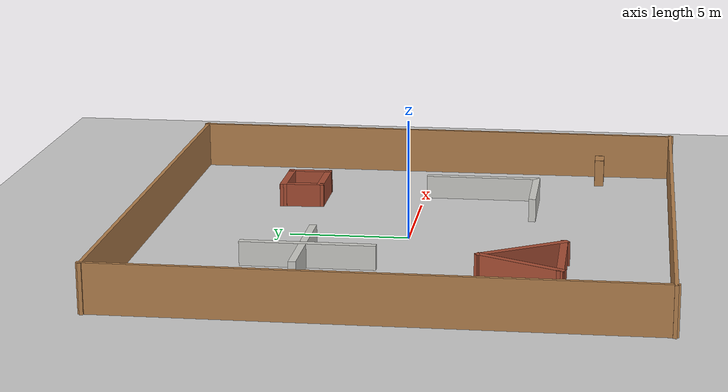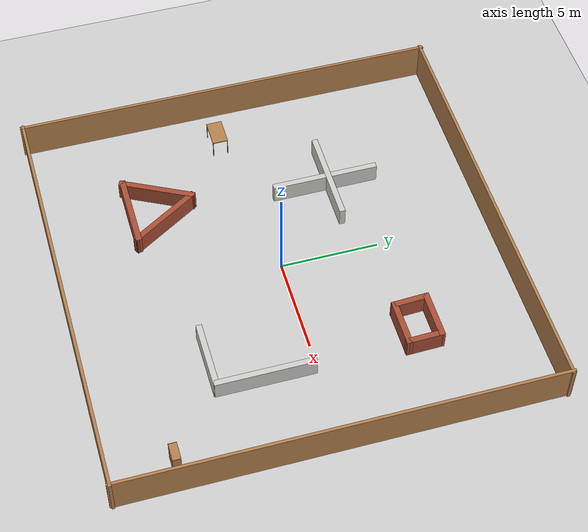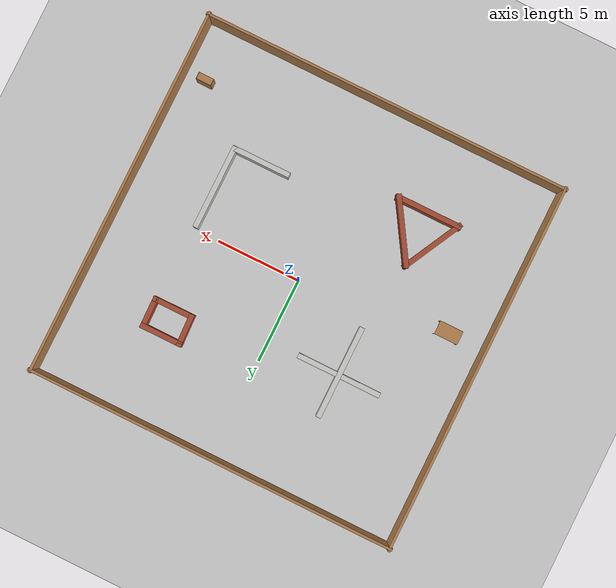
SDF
<sdf version="1.6">
 <world name="default">
  <light name="sun" type="directional">
   <pose>0 0 10 0 -0 0</pose>
   <diffuse>0.8 0.8 0.8 1</diffuse>
   <specular>0.1 0.1 0.1 1</specular>
   <attenuation>
    <range>1000</range>
    <constant>0.9</constant>
    <linear>0.01</linear>
    <quadratic>0.001</quadratic>
   </attenuation>
   <direction>-0.5 0.5 -1</direction>
  </light>
  <model name="ground_plane">
   <static>1</static>
   <link name="link">
    <collision name="collision">
     <geometry><plane><normal>0 0 1</normal><size>100 100</size></plane></geometry>
     <surface><friction><ode><mu>100</mu><mu2>50</mu2></ode></friction></surface>
    </collision>
    <visual name="visual">
     <cast_shadows>0</cast_shadows>
     <geometry><plane><normal>0 0 1</normal><size>100 100</size></plane></geometry>
     <material>
      <script><uri>file://media/materials/scripts/gazebo.material</uri><name>Gazebo/Grey</name></script>
     </material>
    </visual>
   </link>
  </model>
  <gravity>0 0 -9.8</gravity>
  <magnetic_field>6e-06 2.3e-05 -4.2e-05</magnetic_field>
  <atmosphere type="adiabatic"/>
  <physics name="default_physics" default="0" type="ode">
   <max_step_size>0.001</max_step_size>
   <real_time_factor>1</real_time_factor>
   <real_time_update_rate>1000</real_time_update_rate>
   <ode><solver><type>quick</type><iters>100</iters><sor>0.9</sor></solver></ode>
  </physics>
  <scene><ambient>0.4 0.4 0.4 1</ambient><background>0.7 0.7 0.7 1</background><shadows>1</shadows></scene>
  <spherical_coordinates>
   <surface_model>EARTH_WGS84</surface_model>
   <latitude_deg>0</latitude_deg>
   <longitude_deg>0</longitude_deg>
   <elevation>0</elevation>
   <heading_deg>0</heading_deg>
  </spherical_coordinates>
  <model name="box">
   <link name="Wall_11">
    <pose>-4.304 3.714 0 0 -0 0</pose>
    <visual name="Wall_11_Visual">
     <pose>0 0 0.5 0 -0 0</pose>
     <geometry><box><size>5 0.3 1</size></box></geometry>
     <material>
      <script><uri>file://media/materials/scripts/gazebo.material</uri><name>Gazebo/CeilingTiled</name></script>
      <ambient>1 1 1 1</ambient>
      <diffuse>1 1 1 1</diffuse>
      <specular>0 0 0 1</specular>
      <emissive>0 0 0 1</emissive>
     </material>
     <meta><layer>0</layer></meta>
    </visual>
    <collision name="Wall_11_Collision">
     <pose>0 0 0.5 0 -0 0</pose>
     <geometry><box><size>5 0.3 1</size></box></geometry>
     <surface>
      <friction>
       <ode><mu>1</mu><mu2>1</mu2><fdir1>0 0 0</fdir1><slip1>0</slip1><slip2>0</slip2></ode>
       <torsional>
        <coefficient>1</coefficient>
        <patch_radius>0</patch_radius>
        <surface_radius>0</surface_radius>
        <use_patch_radius>1</use_patch_radius>
        <ode><slip>0</slip></ode>
       </torsional>
      </friction>
      <bounce><restitution_coefficient>0</restitution_coefficient><threshold>1e+06</threshold></bounce>
      <contact>
       <collide_without_contact>0</collide_without_contact>
       <collide_without_contact_bitmask>1</collide_without_contact_bitmask>
       <collide_bitmask>1</collide_bitmask>
       <ode>
        <soft_cfm>0</soft_cfm>
        <soft_erp>0.2</soft_erp>
        <kp>1e+13</kp>
        <kd>1</kd>
        <max_vel>0.01</max_vel>
        <min_depth>0</min_depth>
       </ode>
       <bullet>
        <split_impulse>1</split_impulse>
        <split_impulse_penetration_threshold>-0.01</split_impulse_penetration_threshold>
        <soft_cfm>0</soft_cfm>
        <soft_erp>0.2</soft_erp>
        <kp>1e+13</kp>
        <kd>1</kd>
       </bullet>
      </contact>
     </surface>
    </collision>
   </link>
   <link name="Wall_13">
    <pose>-4.310 3.528 0 0 0 -1.5708</pose>
    <visual name="Wall_13_Visual">
     <pose>0 0 0.5 0 -0 0</pose>
     <geometry><box><size>5.5 0.3 1</size></box></geometry>
     <material>
      <script><uri>file://media/materials/scripts/gazebo.material</uri><name>Gazebo/CeilingTiled</name></script>
      <ambient>1 1 1 1</ambient>
      <diffuse>1 1 1 1</diffuse>
      <specular>0 0 0 1</specular>
      <emissive>0 0 0 1</emissive>
     </material>
     <meta><layer>0</layer></meta>
    </visual>
    <collision name="Wall_13_Collision">
     <pose>0 0 0.5 0 -0 0</pose>
     <geometry><box><size>5.5 0.3 1</size></box></geometry>
     <surface>
      <friction>
       <ode><mu>1</mu><mu2>1</mu2><fdir1>0 0 0</fdir1><slip1>0</slip1><slip2>0</slip2></ode>
       <torsional>
        <coefficient>1</coefficient>
        <patch_radius>0</patch_radius>
        <surface_radius>0</surface_radius>
        <use_patch_radius>1</use_patch_radius>
        <ode><slip>0</slip></ode>
       </torsional>
      </friction>
      <bounce><restitution_coefficient>0</restitution_coefficient><threshold>1e+06</threshold></bounce>
      <contact>
       <collide_without_contact>0</collide_without_contact>
       <collide_without_contact_bitmask>1</collide_without_contact_bitmask>
       <collide_bitmask>1</collide_bitmask>
       <ode>
        <soft_cfm>0</soft_cfm>
        <soft_erp>0.2</soft_erp>
        <kp>1e+13</kp>
        <kd>1</kd>
        <max_vel>0.01</max_vel>
        <min_depth>0</min_depth>
       </ode>
       <bullet>
        <split_impulse>1</split_impulse>
        <split_impulse_penetration_threshold>-0.01</split_impulse_penetration_threshold>
        <soft_cfm>0</soft_cfm>
        <soft_erp>0.2</soft_erp>
        <kp>1e+13</kp>
        <kd>1</kd>
       </bullet>
      </contact>
     </surface>
    </collision>
   </link>
   <link name="Wall_15">
    <pose>5.448 6.058 0 0 -0 0</pose>
    <visual name="Wall_15_Visual">
     <pose>0 0 0.5 0 -0 0</pose>
     <geometry><box><size>2.5356 0.3 1</size></box></geometry>
     <material>
      <script><uri>file://media/materials/scripts/gazebo.material</uri><name>Gazebo/Bricks</name></script>
      <ambient>1 1 1 1</ambient>
      <diffuse>1 1 1 1</diffuse>
      <specular>0.2 0.2 0.2 1</specular>
      <emissive>0 0 0 1</emissive>
     </material>
     <meta><layer>0</layer></meta>
    </visual>
    <collision name="Wall_15_Collision">
     <pose>0 0 0.5 0 -0 0</pose>
     <geometry><box><size>2.5356 0.3 1</size></box></geometry>
     <surface>
      <friction>
       <ode><mu>1</mu><mu2>1</mu2><fdir1>0 0 0</fdir1><slip1>0</slip1><slip2>0</slip2></ode>
       <torsional>
        <coefficient>1</coefficient>
        <patch_radius>0</patch_radius>
        <surface_radius>0</surface_radius>
        <use_patch_radius>1</use_patch_radius>
        <ode><slip>0</slip></ode>
       </torsional>
      </friction>
      <bounce><restitution_coefficient>0</restitution_coefficient><threshold>1e+06</threshold></bounce>
      <contact>
       <collide_without_contact>0</collide_without_contact>
       <collide_without_contact_bitmask>1</collide_without_contact_bitmask>
       <collide_bitmask>1</collide_bitmask>
       <ode>
        <soft_cfm>0</soft_cfm>
        <soft_erp>0.2</soft_erp>
        <kp>1e+13</kp>
        <kd>1</kd>
        <max_vel>0.01</max_vel>
        <min_depth>0</min_depth>
       </ode>
       <bullet>
        <split_impulse>1</split_impulse>
        <split_impulse_penetration_threshold>-0.01</split_impulse_penetration_threshold>
        <soft_cfm>0</soft_cfm>
        <soft_erp>0.2</soft_erp>
        <kp>1e+13</kp>
        <kd>1</kd>
       </bullet>
      </contact>
     </surface>
    </collision>
   </link>
   <link name="Wall_16">
    <pose>6.583 5.243 0 0 0 -1.54994</pose>
    <visual name="Wall_16_Visual">
     <pose>0 0 0.5 0 -0 0</pose>
     <geometry><box><size>1.93001 0.3 1</size></box></geometry>
     <material>
      <script><uri>file://media/materials/scripts/gazebo.material</uri><name>Gazebo/Bricks</name></script>
      <ambient>1 1 1 1</ambient>
      <diffuse>1 1 1 1</diffuse>
      <specular>0.2 0.2 0.2 1</specular>
      <emissive>0 0 0 1</emissive>
     </material>
     <meta><layer>0</layer></meta>
    </visual>
    <collision name="Wall_16_Collision">
     <pose>0 0 0.5 0 -0 0</pose>
     <geometry><box><size>1.93001 0.3 1</size></box></geometry>
     <surface>
      <friction>
       <ode><mu>1</mu><mu2>1</mu2><fdir1>0 0 0</fdir1><slip1>0</slip1><slip2>0</slip2></ode>
       <torsional>
        <coefficient>1</coefficient>
        <patch_radius>0</patch_radius>
        <surface_radius>0</surface_radius>
        <use_patch_radius>1</use_patch_radius>
        <ode><slip>0</slip></ode>
       </torsional>
      </friction>
      <bounce><restitution_coefficient>0</restitution_coefficient><threshold>1e+06</threshold></bounce>
      <contact>
       <collide_without_contact>0</collide_without_contact>
       <collide_without_contact_bitmask>1</collide_without_contact_bitmask>
       <collide_bitmask>1</collide_bitmask>
       <ode>
        <soft_cfm>0</soft_cfm>
        <soft_erp>0.2</soft_erp>
        <kp>1e+13</kp>
        <kd>1</kd>
        <max_vel>0.01</max_vel>
        <min_depth>0</min_depth>
       </ode>
       <bullet>
        <split_impulse>1</split_impulse>
        <split_impulse_penetration_threshold>-0.01</split_impulse_penetration_threshold>
        <soft_cfm>0</soft_cfm>
        <soft_erp>0.2</soft_erp>
        <kp>1e+13</kp>
        <kd>1</kd>
       </bullet>
      </contact>
     </surface>
    </collision>
   </link>
   <link name="Wall_17">
    <pose>5.5 4.428 0 0 -0 3.14159</pose>
    <visual name="Wall_17_Visual">
     <pose>0 0 0.5 0 -0 0</pose>
     <geometry><box><size>2.5 0.3 1</size></box></geometry>
     <material>
      <script><uri>file://media/materials/scripts/gazebo.material</uri><name>Gazebo/Bricks</name></script>
      <ambient>1 1 1 1</ambient>
      <diffuse>1 1 1 1</diffuse>
      <specular>0.2 0.2 0.2 1</specular>
      <emissive>0 0 0 1</emissive>
     </material>
     <meta><layer>0</layer></meta>
    </visual>
    <collision name="Wall_17_Collision">
     <pose>0 0 0.5 0 -0 0</pose>
     <geometry><box><size>2.5 0.3 1</size></box></geometry>
     <surface>
      <friction>
       <ode><mu>1</mu><mu2>1</mu2><fdir1>0 0 0</fdir1><slip1>0</slip1><slip2>0</slip2></ode>
       <torsional>
        <coefficient>1</coefficient>
        <patch_radius>0</patch_radius>
        <surface_radius>0</surface_radius>
        <use_patch_radius>1</use_patch_radius>
        <ode><slip>0</slip></ode>
       </torsional>
      </friction>
      <bounce><restitution_coefficient>0</restitution_coefficient><threshold>1e+06</threshold></bounce>
      <contact>
       <collide_without_contact>0</collide_without_contact>
       <collide_without_contact_bitmask>1</collide_without_contact_bitmask>
       <collide_bitmask>1</collide_bitmask>
       <ode>
        <soft_cfm>0</soft_cfm>
        <soft_erp>0.2</soft_erp>
        <kp>1e+13</kp>
        <kd>1</kd>
        <max_vel>0.01</max_vel>
        <min_depth>0</min_depth>
       </ode>
       <bullet>
        <split_impulse>1</split_impulse>
        <split_impulse_penetration_threshold>-0.01</split_impulse_penetration_threshold>
        <soft_cfm>0</soft_cfm>
        <soft_erp>0.2</soft_erp>
        <kp>1e+13</kp>
        <kd>1</kd>
       </bullet>
      </contact>
     </surface>
    </collision>
   </link>
   <link name="Wall_18">
    <pose>4.365 5.243 0 0 -0 1.61372</pose>
    <visual name="Wall_18_Visual">
     <pose>0 0 0.5 0 -0 0</pose>
     <geometry><box><size>1.93001 0.3 1</size></box></geometry>
     <material>
      <script><uri>file://media/materials/scripts/gazebo.material</uri><name>Gazebo/Bricks</name></script>
      <ambient>1 1 1 1</ambient>
      <diffuse>1 1 1 1</diffuse>
      <specular>0.2 0.2 0.2 1</specular>
      <emissive>0 0 0 1</emissive>
     </material>
     <meta><layer>0</layer></meta>
    </visual>
    <collision name="Wall_18_Collision">
     <pose>0 0 0.5 0 -0 0</pose>
     <geometry><box><size>1.93001 0.3 1</size></box></geometry>
     <surface>
      <friction>
       <ode><mu>1</mu><mu2>1</mu2><fdir1>0 0 0</fdir1><slip1>0</slip1><slip2>0</slip2></ode>
       <torsional>
        <coefficient>1</coefficient>
        <patch_radius>0</patch_radius>
        <surface_radius>0</surface_radius>
        <use_patch_radius>1</use_patch_radius>
        <ode><slip>0</slip></ode>
       </torsional>
      </friction>
      <bounce><restitution_coefficient>0</restitution_coefficient><threshold>1e+06</threshold></bounce>
      <contact>
       <collide_without_contact>0</collide_without_contact>
       <collide_without_contact_bitmask>1</collide_without_contact_bitmask>
       <collide_bitmask>1</collide_bitmask>
       <ode>
        <soft_cfm>0</soft_cfm>
        <soft_erp>0.2</soft_erp>
        <kp>1e+13</kp>
        <kd>1</kd>
        <max_vel>0.01</max_vel>
        <min_depth>0</min_depth>
       </ode>
       <bullet>
        <split_impulse>1</split_impulse>
        <split_impulse_penetration_threshold>-0.01</split_impulse_penetration_threshold>
        <soft_cfm>0</soft_cfm>
        <soft_erp>0.2</soft_erp>
        <kp>1e+13</kp>
        <kd>1</kd>
       </bullet>
      </contact>
     </surface>
    </collision>
   </link>
   <link name="Wall_24">
    <pose>-5.79152 -4.98176 0 0 -0 1.09459</pose>
    <visual name="Wall_24_Visual">
     <pose>0 0 0.5 0 -0 0</pose>
     <geometry><box><size>3.95408 0.3 1</size></box></geometry>
     <material>
      <script><uri>file://media/materials/scripts/gazebo.material</uri><name>Gazebo/Bricks</name></script>
      <ambient>1 1 1 1</ambient>
      <diffuse>1 1 1 1</diffuse>
      <specular>0.2 0.2 0.2 1</specular>
      <emissive>0 0 0 1</emissive>
     </material>
     <meta><layer>0</layer></meta>
    </visual>
    <collision name="Wall_24_Collision">
     <pose>0 0 0.5 0 -0 0</pose>
     <geometry><box><size>3.95408 0.3 1</size></box></geometry>
     <surface>
      <friction>
       <ode><mu>1</mu><mu2>1</mu2><fdir1>0 0 0</fdir1><slip1>0</slip1><slip2>0</slip2></ode>
       <torsional>
        <coefficient>1</coefficient>
        <patch_radius>0</patch_radius>
        <surface_radius>0</surface_radius>
        <use_patch_radius>1</use_patch_radius>
        <ode><slip>0</slip></ode>
       </torsional>
      </friction>
      <bounce><restitution_coefficient>0</restitution_coefficient><threshold>1e+06</threshold></bounce>
      <contact>
       <collide_without_contact>0</collide_without_contact>
       <collide_without_contact_bitmask>1</collide_without_contact_bitmask>
       <collide_bitmask>1</collide_bitmask>
       <ode>
        <soft_cfm>0</soft_cfm>
        <soft_erp>0.2</soft_erp>
        <kp>1e+13</kp>
        <kd>1</kd>
        <max_vel>0.01</max_vel>
        <min_depth>0</min_depth>
       </ode>
       <bullet>
        <split_impulse>1</split_impulse>
        <split_impulse_penetration_threshold>-0.01</split_impulse_penetration_threshold>
        <soft_cfm>0</soft_cfm>
        <soft_erp>0.2</soft_erp>
        <kp>1e+13</kp>
        <kd>1</kd>
       </bullet>
      </contact>
     </surface>
    </collision>
   </link>
   <link name="Wall_25">
    <pose>-3.94154 -4.98176 0 0 0 -1.01325</pose>
    <visual name="Wall_25_Visual">
     <pose>0 0 0.5 0 -0 0</pose>
     <geometry><box><size>4.12712 0.3 1</size></box></geometry>
     <material>
      <script><uri>file://media/materials/scripts/gazebo.material</uri><name>Gazebo/Bricks</name></script>
      <ambient>1 1 1 1</ambient>
      <diffuse>1 1 1 1</diffuse>
      <specular>0.2 0.2 0.2 1</specular>
      <emissive>0 0 0 1</emissive>
     </material>
     <meta><layer>0</layer></meta>
    </visual>
    <collision name="Wall_25_Collision">
     <pose>0 0 0.5 0 -0 0</pose>
     <geometry><box><size>4.12712 0.3 1</size></box></geometry>
     <surface>
      <friction>
       <ode><mu>1</mu><mu2>1</mu2><fdir1>0 0 0</fdir1><slip1>0</slip1><slip2>0</slip2></ode>
       <torsional>
        <coefficient>1</coefficient>
        <patch_radius>0</patch_radius>
        <surface_radius>0</surface_radius>
        <use_patch_radius>1</use_patch_radius>
        <ode><slip>0</slip></ode>
       </torsional>
      </friction>
      <bounce><restitution_coefficient>0</restitution_coefficient><threshold>1e+06</threshold></bounce>
      <contact>
       <collide_without_contact>0</collide_without_contact>
       <collide_without_contact_bitmask>1</collide_without_contact_bitmask>
       <collide_bitmask>1</collide_bitmask>
       <ode>
        <soft_cfm>0</soft_cfm>
        <soft_erp>0.2</soft_erp>
        <kp>1e+13</kp>
        <kd>1</kd>
        <max_vel>0.01</max_vel>
        <min_depth>0</min_depth>
       </ode>
       <bullet>
        <split_impulse>1</split_impulse>
        <split_impulse_penetration_threshold>-0.01</split_impulse_penetration_threshold>
        <soft_cfm>0</soft_cfm>
        <soft_erp>0.2</soft_erp>
        <kp>1e+13</kp>
        <kd>1</kd>
       </bullet>
      </contact>
     </surface>
    </collision>
   </link>
   <link name="Wall_26">
    <pose>-4.77906 -6.57054 0 0 -0 3.14159</pose>
    <visual name="Wall_26_Visual">
     <pose>0 0 0.5 0 -0 0</pose>
     <geometry><box><size>4 0.3 1</size></box></geometry>
     <material>
      <script><uri>file://media/materials/scripts/gazebo.material</uri><name>Gazebo/Bricks</name></script>
      <ambient>1 1 1 1</ambient>
      <diffuse>1 1 1 1</diffuse>
      <specular>0.2 0.2 0.2 1</specular>
      <emissive>0 0 0 1</emissive>
     </material>
     <meta><layer>0</layer></meta>
    </visual>
    <collision name="Wall_26_Collision">
     <pose>0 0 0.5 0 -0 0</pose>
     <geometry><box><size>4 0.3 1</size></box></geometry>
     <surface>
      <friction>
       <ode><mu>1</mu><mu2>1</mu2><fdir1>0 0 0</fdir1><slip1>0</slip1><slip2>0</slip2></ode>
       <torsional>
        <coefficient>1</coefficient>
        <patch_radius>0</patch_radius>
        <surface_radius>0</surface_radius>
        <use_patch_radius>1</use_patch_radius>
        <ode><slip>0</slip></ode>
       </torsional>
      </friction>
      <bounce><restitution_coefficient>0</restitution_coefficient><threshold>1e+06</threshold></bounce>
      <contact>
       <collide_without_contact>0</collide_without_contact>
       <collide_without_contact_bitmask>1</collide_without_contact_bitmask>
       <collide_bitmask>1</collide_bitmask>
       <ode>
        <soft_cfm>0</soft_cfm>
        <soft_erp>0.2</soft_erp>
        <kp>1e+13</kp>
        <kd>1</kd>
        <max_vel>0.01</max_vel>
        <min_depth>0</min_depth>
       </ode>
       <bullet>
        <split_impulse>1</split_impulse>
        <split_impulse_penetration_threshold>-0.01</split_impulse_penetration_threshold>
        <soft_cfm>0</soft_cfm>
        <soft_erp>0.2</soft_erp>
        <kp>1e+13</kp>
        <kd>1</kd>
       </bullet>
      </contact>
     </surface>
    </collision>
   </link>
   <link name="Wall_28">
    <pose>4.77626 -4.96094 0 0 -0 0</pose>
    <visual name="Wall_28_Visual">
     <pose>0 0 0.5 0 -0 0</pose>
     <geometry><box><size>3.5 0.3 1</size></box></geometry>
     <material>
      <script><uri>file://media/materials/scripts/gazebo.material</uri><name>Gazebo/CeilingTiled</name></script>
      <ambient>1 1 1 1</ambient>
      <diffuse>1 1 1 1</diffuse>
      <specular>0 0 0 1</specular>
      <emissive>0 0 0 1</emissive>
     </material>
     <meta><layer>0</layer></meta>
    </visual>
    <collision name="Wall_28_Collision">
     <pose>0 0 0.5 0 -0 0</pose>
     <geometry><box><size>3.5 0.3 1</size></box></geometry>
     <surface>
      <friction>
       <ode><mu>1</mu><mu2>1</mu2><fdir1>0 0 0</fdir1><slip1>0</slip1><slip2>0</slip2></ode>
       <torsional>
        <coefficient>1</coefficient>
        <patch_radius>0</patch_radius>
        <surface_radius>0</surface_radius>
        <use_patch_radius>1</use_patch_radius>
        <ode><slip>0</slip></ode>
       </torsional>
      </friction>
      <bounce><restitution_coefficient>0</restitution_coefficient><threshold>1e+06</threshold></bounce>
      <contact>
       <collide_without_contact>0</collide_without_contact>
       <collide_without_contact_bitmask>1</collide_without_contact_bitmask>
       <collide_bitmask>1</collide_bitmask>
       <ode>
        <soft_cfm>0</soft_cfm>
        <soft_erp>0.2</soft_erp>
        <kp>1e+13</kp>
        <kd>1</kd>
        <max_vel>0.01</max_vel>
        <min_depth>0</min_depth>
       </ode>
       <bullet>
        <split_impulse>1</split_impulse>
        <split_impulse_penetration_threshold>-0.01</split_impulse_penetration_threshold>
        <soft_cfm>0</soft_cfm>
        <soft_erp>0.2</soft_erp>
        <kp>1e+13</kp>
        <kd>1</kd>
       </bullet>
      </contact>
     </surface>
    </collision>
   </link>
   <link name="Wall_29">
    <pose>6.41124 -2.57596 0 0 -0 1.5708</pose>
    <visual name="Wall_29_Visual">
     <pose>0 0 0.5 0 -0 0</pose>
     <geometry><box><size>5 0.3 1</size></box></geometry>
     <material>
      <script><uri>file://media/materials/scripts/gazebo.material</uri><name>Gazebo/CeilingTiled</name></script>
      <ambient>1 1 1 1</ambient>
      <diffuse>1 1 1 1</diffuse>
      <specular>0 0 0 1</specular>
      <emissive>0 0 0 1</emissive>
     </material>
     <meta><layer>0</layer></meta>
    </visual>
    <collision name="Wall_29_Collision">
     <pose>0 0 0.5 0 -0 0</pose>
     <geometry><box><size>5 0.3 1</size></box></geometry>
     <surface>
      <friction>
       <ode><mu>1</mu><mu2>1</mu2><fdir1>0 0 0</fdir1><slip1>0</slip1><slip2>0</slip2></ode>
       <torsional>
        <coefficient>1</coefficient>
        <patch_radius>0</patch_radius>
        <surface_radius>0</surface_radius>
        <use_patch_radius>1</use_patch_radius>
        <ode><slip>0</slip></ode>
       </torsional>
      </friction>
      <bounce><restitution_coefficient>0</restitution_coefficient><threshold>1e+06</threshold></bounce>
      <contact>
       <collide_without_contact>0</collide_without_contact>
       <collide_without_contact_bitmask>1</collide_without_contact_bitmask>
       <collide_bitmask>1</collide_bitmask>
       <ode>
        <soft_cfm>0</soft_cfm>
        <soft_erp>0.2</soft_erp>
        <kp>1e+13</kp>
        <kd>1</kd>
        <max_vel>0.01</max_vel>
        <min_depth>0</min_depth>
       </ode>
       <bullet>
        <split_impulse>1</split_impulse>
        <split_impulse_penetration_threshold>-0.01</split_impulse_penetration_threshold>
        <soft_cfm>0</soft_cfm>
        <soft_erp>0.2</soft_erp>
        <kp>1e+13</kp>
        <kd>1</kd>
       </bullet>
      </contact>
     </surface>
    </collision>
   </link>
   <link name="Wall_6">
    <pose>0 10.85 0 0 -0 0</pose>
    <visual name="Wall_6_Visual">
     <pose>0 0 1 0 -0 0</pose>
     <geometry><box><size>22 0.15 2</size></box></geometry>
     <material>
      <script><uri>file://media/materials/scripts/gazebo.material</uri><name>Gazebo/Wood</name></script>
      <ambient>1 1 1 1</ambient>
      <diffuse>1 1 1 1</diffuse>
      <specular>0.2 0.2 0.2 1</specular>
      <emissive>0 0 0 1</emissive>
     </material>
     <meta><layer>0</layer></meta>
    </visual>
    <collision name="Wall_6_Collision">
     <pose>0 0 1 0 -0 0</pose>
     <geometry><box><size>22 0.15 2</size></box></geometry>
     <surface>
      <friction>
       <ode><mu>1</mu><mu2>1</mu2><fdir1>0 0 0</fdir1><slip1>0</slip1><slip2>0</slip2></ode>
       <torsional>
        <coefficient>1</coefficient>
        <patch_radius>0</patch_radius>
        <surface_radius>0</surface_radius>
        <use_patch_radius>1</use_patch_radius>
        <ode><slip>0</slip></ode>
       </torsional>
      </friction>
      <bounce><restitution_coefficient>0</restitution_coefficient><threshold>1e+06</threshold></bounce>
      <contact>
       <collide_without_contact>0</collide_without_contact>
       <collide_without_contact_bitmask>1</collide_without_contact_bitmask>
       <collide_bitmask>1</collide_bitmask>
       <ode>
        <soft_cfm>0</soft_cfm>
        <soft_erp>0.2</soft_erp>
        <kp>1e+13</kp>
        <kd>1</kd>
        <max_vel>0.01</max_vel>
        <min_depth>0</min_depth>
       </ode>
       <bullet>
        <split_impulse>1</split_impulse>
        <split_impulse_penetration_threshold>-0.01</split_impulse_penetration_threshold>
        <soft_cfm>0</soft_cfm>
        <soft_erp>0.2</soft_erp>
        <kp>1e+13</kp>
        <kd>1</kd>
       </bullet>
      </contact>
     </surface>
    </collision>
   </link>
   <link name="Wall_7">
    <pose>10.85 0 0 0 0 -1.5708</pose>
    <visual name="Wall_7_Visual">
     <pose>0 0 1 0 -0 0</pose>
     <geometry><box><size>22 0.15 2</size></box></geometry>
     <material>
      <script><uri>file://media/materials/scripts/gazebo.material</uri><name>Gazebo/Wood</name></script>
      <ambient>1 1 1 1</ambient>
      <diffuse>1 1 1 1</diffuse>
      <specular>0.2 0.2 0.2 1</specular>
      <emissive>0 0 0 1</emissive>
     </material>
     <meta><layer>0</layer></meta>
    </visual>
    <collision name="Wall_7_Collision">
     <pose>0 0 1 0 -0 0</pose>
     <geometry><box><size>22 0.15 2</size></box></geometry>
     <surface>
      <friction>
       <ode><mu>1</mu><mu2>1</mu2><fdir1>0 0 0</fdir1><slip1>0</slip1><slip2>0</slip2></ode>
       <torsional>
        <coefficient>1</coefficient>
        <patch_radius>0</patch_radius>
        <surface_radius>0</surface_radius>
        <use_patch_radius>1</use_patch_radius>
        <ode><slip>0</slip></ode>
       </torsional>
      </friction>
      <bounce><restitution_coefficient>0</restitution_coefficient><threshold>1e+06</threshold></bounce>
      <contact>
       <collide_without_contact>0</collide_without_contact>
       <collide_without_contact_bitmask>1</collide_without_contact_bitmask>
       <collide_bitmask>1</collide_bitmask>
       <ode>
        <soft_cfm>0</soft_cfm>
        <soft_erp>0.2</soft_erp>
        <kp>1e+13</kp>
        <kd>1</kd>
        <max_vel>0.01</max_vel>
        <min_depth>0</min_depth>
       </ode>
       <bullet>
        <split_impulse>1</split_impulse>
        <split_impulse_penetration_threshold>-0.01</split_impulse_penetration_threshold>
        <soft_cfm>0</soft_cfm>
        <soft_erp>0.2</soft_erp>
        <kp>1e+13</kp>
        <kd>1</kd>
       </bullet>
      </contact>
     </surface>
    </collision>
   </link>
   <link name="Wall_8">
    <pose>0 -10.85 0 0 -0 3.14159</pose>
    <visual name="Wall_8_Visual">
     <pose>0 0 1 0 -0 0</pose>
     <geometry><box><size>22 0.15 2</size></box></geometry>
     <material>
      <script><uri>file://media/materials/scripts/gazebo.material</uri><name>Gazebo/Wood</name></script>
      <ambient>1 1 1 1</ambient>
      <diffuse>1 1 1 1</diffuse>
      <specular>0.2 0.2 0.2 1</specular>
      <emissive>0 0 0 1</emissive>
     </material>
     <meta><layer>0</layer></meta>
    </visual>
    <collision name="Wall_8_Collision">
     <pose>0 0 1 0 -0 0</pose>
     <geometry><box><size>22 0.15 2</size></box></geometry>
     <surface>
      <friction>
       <ode><mu>1</mu><mu2>1</mu2><fdir1>0 0 0</fdir1><slip1>0</slip1><slip2>0</slip2></ode>
       <torsional>
        <coefficient>1</coefficient>
        <patch_radius>0</patch_radius>
        <surface_radius>0</surface_radius>
        <use_patch_radius>1</use_patch_radius>
        <ode><slip>0</slip></ode>
       </torsional>
      </friction>
      <bounce><restitution_coefficient>0</restitution_coefficient><threshold>1e+06</threshold></bounce>
      <contact>
       <collide_without_contact>0</collide_without_contact>
       <collide_without_contact_bitmask>1</collide_without_contact_bitmask>
       <collide_bitmask>1</collide_bitmask>
       <ode>
        <soft_cfm>0</soft_cfm>
        <soft_erp>0.2</soft_erp>
        <kp>1e+13</kp>
        <kd>1</kd>
        <max_vel>0.01</max_vel>
        <min_depth>0</min_depth>
       </ode>
       <bullet>
        <split_impulse>1</split_impulse>
        <split_impulse_penetration_threshold>-0.01</split_impulse_penetration_threshold>
        <soft_cfm>0</soft_cfm>
        <soft_erp>0.2</soft_erp>
        <kp>1e+13</kp>
        <kd>1</kd>
       </bullet>
      </contact>
     </surface>
    </collision>
   </link>
   <link name="Wall_9">
    <pose>-10.85 0 0 0 -0 1.5708</pose>
    <visual name="Wall_9_Visual">
     <pose>0 0 1 0 -0 0</pose>
     <geometry><box><size>22 0.15 2</size></box></geometry>
     <material>
      <script><uri>file://media/materials/scripts/gazebo.material</uri><name>Gazebo/Wood</name></script>
      <ambient>1 1 1 1</ambient>
      <diffuse>1 1 1 1</diffuse>
      <specular>0.2 0.2 0.2 1</specular>
      <emissive>0 0 0 1</emissive>
     </material>
     <meta><layer>0</layer></meta>
    </visual>
    <collision name="Wall_9_Collision">
     <pose>0 0 1 0 -0 0</pose>
     <geometry><box><size>22 0.15 2</size></box></geometry>
     <surface>
      <friction>
       <ode><mu>1</mu><mu2>1</mu2><fdir1>0 0 0</fdir1><slip1>0</slip1><slip2>0</slip2></ode>
       <torsional>
        <coefficient>1</coefficient>
        <patch_radius>0</patch_radius>
        <surface_radius>0</surface_radius>
        <use_patch_radius>1</use_patch_radius>
        <ode><slip>0</slip></ode>
       </torsional>
      </friction>
      <bounce><restitution_coefficient>0</restitution_coefficient><threshold>1e+06</threshold></bounce>
      <contact>
       <collide_without_contact>0</collide_without_contact>
       <collide_without_contact_bitmask>1</collide_without_contact_bitmask>
       <collide_bitmask>1</collide_bitmask>
       <ode>
        <soft_cfm>0</soft_cfm>
        <soft_erp>0.2</soft_erp>
        <kp>1e+13</kp>
        <kd>1</kd>
        <max_vel>0.01</max_vel>
        <min_depth>0</min_depth>
       </ode>
       <bullet>
        <split_impulse>1</split_impulse>
        <split_impulse_penetration_threshold>-0.01</split_impulse_penetration_threshold>
        <soft_cfm>0</soft_cfm>
        <soft_erp>0.2</soft_erp>
        <kp>1e+13</kp>
        <kd>1</kd>
       </bullet>
      </contact>
     </surface>
    </collision>
   </link>
   <static>1</static>
   <pose>0.000564 -0.000118 0 0 -0 0</pose>
  </model>
  <model name="bookshelf">
   <static>1</static>
   <link name="link">
    <inertial><mass>1</mass></inertial>
    <collision name="back">
     <pose>0 0.005 0.6 0 -0 0</pose>
     <geometry><box><size>0.9 0.01 1.2</size></box></geometry>
    </collision>
    <visual name="visual1">
     <pose>0 0.005 0.6 0 -0 0</pose>
     <geometry><box><size>0.9 0.01 1.2</size></box></geometry>
     <material>
      <script><uri>file://media/materials/scripts/gazebo.material</uri><name>Gazebo/Wood</name></script>
     </material>
    </visual>
    <collision name="left_side">
     <pose>0.45 -0.195 0.6 0 -0 0</pose>
     <geometry><box><size>0.02 0.4 1.2</size></box></geometry>
    </collision>
    <visual name="visual2">
     <pose>0.45 -0.195 0.6 0 -0 0</pose>
     <geometry><box><size>0.02 0.4 1.2</size></box></geometry>
     <material>
      <script><uri>file://media/materials/scripts/gazebo.material</uri><name>Gazebo/Wood</name></script>
     </material>
    </visual>
    <collision name="right_side">
     <pose>-0.45 -0.195 0.6 0 -0 0</pose>
     <geometry><box><size>0.02 0.4 1.2</size></box></geometry>
    </collision>
    <visual name="visual3">
     <pose>-0.45 -0.195 0.6 0 -0 0</pose>
     <geometry><box><size>0.02 0.4 1.2</size></box></geometry>
     <material>
      <script><uri>file://media/materials/scripts/gazebo.material</uri><name>Gazebo/Wood</name></script>
     </material>
    </visual>
    <collision name="bottom">
     <pose>0 -0.195 0.03 0 -0 0</pose>
     <geometry><box><size>0.88 0.4 0.06</size></box></geometry>
    </collision>
    <visual name="visual4">
     <pose>0 -0.195 0.03 0 -0 0</pose>
     <geometry><box><size>0.88 0.4 0.06</size></box></geometry>
     <material>
      <script><uri>file://media/materials/scripts/gazebo.material</uri><name>Gazebo/Wood</name></script>
     </material>
    </visual>
    <collision name="top">
     <pose>0 -0.195 1.19 0 -0 0</pose>
     <geometry><box><size>0.88 0.4 0.02</size></box></geometry>
    </collision>
    <visual name="visual5">
     <pose>0 -0.195 1.19 0 -0 0</pose>
     <geometry><box><size>0.88 0.4 0.02</size></box></geometry>
     <material>
      <script><uri>file://media/materials/scripts/gazebo.material</uri><name>Gazebo/Wood</name></script>
     </material>
    </visual>
    <collision name="low_shelf">
     <pose>0 -0.195 0.43 0 -0 0</pose>
     <geometry><box><size>0.88 0.4 0.02</size></box></geometry>
    </collision>
    <visual name="visual6">
     <pose>0 -0.195 0.43 0 -0 0</pose>
     <geometry><box><size>0.88 0.4 0.02</size></box></geometry>
     <material>
      <script><uri>file://media/materials/scripts/gazebo.material</uri><name>Gazebo/Wood</name></script>
     </material>
    </visual>
    <collision name="high_shelf">
     <pose>0 -0.195 0.8 0 -0 0</pose>
     <geometry><box><size>0.88 0.4 0.02</size></box></geometry>
    </collision>
    <visual name="visual7">
     <pose>0 -0.195 0.8 0 -0 0</pose>
     <geometry><box><size>0.88 0.4 0.02</size></box></geometry>
     <material>
      <script><uri>file://media/materials/scripts/gazebo.material</uri><name>Gazebo/Wood</name></script>
     </material>
    </visual>
   </link>
   <pose>9.56824 -7.47672 0 0 -0 0</pose>
  </model>
  <model name="table">
   <static>0</static>
   <link name="link">
    <collision name="surface">
     <pose>0 0 1 0 -0 0</pose>
     <geometry><box><size>1.5 0.8 0.03</size></box></geometry>
     <surface><friction><ode><mu>0.6</mu><mu2>0.6</mu2></ode></friction></surface>
    </collision>
    <visual name="visual1">
     <pose>0 0 1 0 -0 0</pose>
     <geometry><box><size>1.4 0.8 0.04</size></box></geometry>
     <material>
      <script><uri>file://media/materials/scripts/gazebo.material</uri><name>Gazebo/Wood</name></script>
     </material>
    </visual>
    <collision name="front_left_leg">
     <pose>0.68 0.38 0.5 0 -0 0</pose>
     <geometry><cylinder><radius>0.02</radius><length>1</length></cylinder></geometry>
    </collision>
    <visual name="front_left_leg">
     <pose>0.68 0.38 0.5 0 -0 0</pose>
     <geometry><cylinder><radius>0.02</radius><length>1</length></cylinder></geometry>
     <material>
      <script><uri>file://media/materials/scripts/gazebo.material</uri><name>Gazebo/Grey</name></script>
     </material>
    </visual>
    <collision name="front_right_leg">
     <pose>0.68 -0.38 0.5 0 -0 0</pose>
     <geometry><cylinder><radius>0.02</radius><length>1</length></cylinder></geometry>
    </collision>
    <visual name="front_right_leg">
     <pose>0.68 -0.38 0.5 0 -0 0</pose>
     <geometry><cylinder><radius>0.02</radius><length>1</length></cylinder></geometry>
     <material>
      <script><uri>file://media/materials/scripts/gazebo.material</uri><name>Gazebo/Grey</name></script>
     </material>
    </visual>
    <collision name="back_right_leg">
     <pose>-0.68 -0.38 0.5 0 -0 0</pose>
     <geometry><cylinder><radius>0.02</radius><length>1</length></cylinder></geometry>
    </collision>
    <visual name="back_right_leg">
     <pose>-0.68 -0.38 0.5 0 -0 0</pose>
     <geometry><cylinder><radius>0.02</radius><length>1</length></cylinder></geometry>
     <material>
      <script><uri>file://media/materials/scripts/gazebo.material</uri><name>Gazebo/Grey</name></script>
     </material>
    </visual>
    <collision name="back_left_leg">
     <pose>-0.68 0.38 0.5 0 -0 0</pose>
     <geometry><cylinder><radius>0.02</radius><length>1</length></cylinder></geometry>
    </collision>
    <visual name="back_left_leg">
     <pose>-0.68 0.38 0.5 0 -0 0</pose>
     <geometry><cylinder><radius>0.02</radius><length>1</length></cylinder></geometry>
     <material>
      <script><uri>file://media/materials/scripts/gazebo.material</uri><name>Gazebo/Grey</name></script>
     </material>
    </visual>
    <inertial>
     <inertia><ixx>1</ixx><ixy>0</ixy><ixz>0</ixz><iyy>1</iyy><iyz>0</iyz><izz>1</izz></inertia>
     <mass>1</mass>
    </inertial>
   </link>
   <pose>-8.68496 -1.065908 -9e-06 1e-06 -1e-06 0</pose>
  </model>
  <plugin name="gazebo_ros_state" filename="libgazebo_ros_state.so">
   <ros><namespace>/gazebo</namespace></ros>
   <update_rate>1.0</update_rate>
  </plugin>
 </world>
</sdf>
